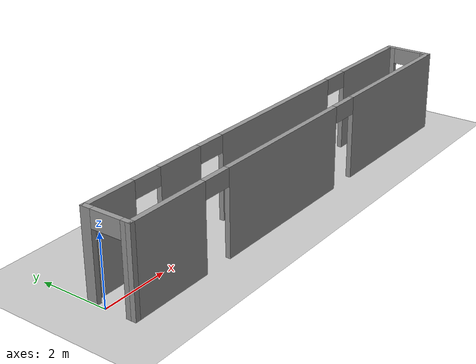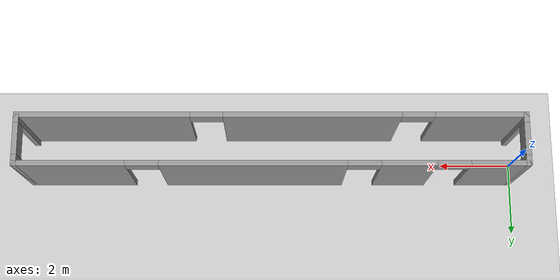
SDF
<sdf version="1.6">
 <world name="default">
  <light name="sun" type="directional">
   <pose>0 0 10 0 -0 0</pose>
   <diffuse>0.8 0.8 0.8 1</diffuse>
   <specular>0.2 0.2 0.2 1</specular>
   <attenuation>
    <range>1000</range>
    <constant>0.9</constant>
    <linear>0.01</linear>
    <quadratic>0.001</quadratic>
   </attenuation>
   <direction>-0.5 0.1 -0.9</direction>
  </light>
  <model name="ground_plane">
   <static>1</static>
   <link name="link">
    <collision name="collision">
     <geometry><plane><normal>0 0 1</normal><size>100 100</size></plane></geometry>
     <surface>
      <contact><collide_bitmask>65535</collide_bitmask></contact>
      <friction><ode><mu>100</mu><mu2>50</mu2></ode></friction>
     </surface>
    </collision>
    <visual name="visual">
     <cast_shadows>0</cast_shadows>
     <geometry><plane><normal>0 0 1</normal><size>100 100</size></plane></geometry>
     <material>
      <script><uri>file://media/materials/scripts/gazebo.material</uri><name>Gazebo/Grey</name></script>
     </material>
    </visual>
   </link>
  </model>
  <gravity>0 0 -9.8</gravity>
  <magnetic_field>6e-06 2.3e-05 -4.2e-05</magnetic_field>
  <atmosphere type="adiabatic"/>
  <physics name="default_physics" default="0" type="ode">
   <max_step_size>0.001</max_step_size>
   <real_time_factor>1</real_time_factor>
   <real_time_update_rate>1000</real_time_update_rate>
  </physics>
  <scene><ambient>0.4 0.4 0.4 1</ambient><background>0.7 0.7 0.7 1</background><shadows>1</shadows></scene>
  <spherical_coordinates>
   <surface_model>EARTH_WGS84</surface_model>
   <latitude_deg>0</latitude_deg>
   <longitude_deg>0</longitude_deg>
   <elevation>0</elevation>
   <heading_deg>0</heading_deg>
  </spherical_coordinates>
  <model name="world_4">
   <pose>7 0.75 0 0 -0 0</pose>
   <link name="Wall_2">
    <pose>0 -0.2575 0 0 -0 0</pose>
    <visual name="Wall_2_Visual_0">
     <pose>-6.1875 0 1.25 0 -0 0</pose>
     <geometry><box><size>1.625 0.15 2.5</size></box></geometry>
     <material>
      <script><uri>file://media/materials/scripts/gazebo.material</uri><name>Gazebo/Grey</name></script>
      <ambient>1 1 1 1</ambient>
     </material>
     <meta><layer>0</layer></meta>
    </visual>
    <collision name="Wall_2_Collision_0">
     <geometry><box><size>1.625 0.15 2.5</size></box></geometry>
     <pose>-6.1875 0 1.25 0 -0 0</pose>
    </collision>
    <visual name="Wall_2_Visual_1">
     <pose>-3.72 0 1.25 0 -0 0</pose>
     <geometry><box><size>1.51 0.15 2.5</size></box></geometry>
     <material>
      <script><uri>file://media/materials/scripts/gazebo.material</uri><name>Gazebo/Grey</name></script>
      <ambient>1 1 1 1</ambient>
     </material>
     <meta><layer>0</layer></meta>
    </visual>
    <collision name="Wall_2_Collision_1">
     <geometry><box><size>1.51 0.15 2.5</size></box></geometry>
     <pose>-3.72 0 1.25 0 -0 0</pose>
    </collision>
    <visual name="Wall_2_Visual_2">
     <pose>0.485 0 1.25 0 -0 0</pose>
     <geometry><box><size>5.1 0.15 2.5</size></box></geometry>
     <material>
      <script><uri>file://media/materials/scripts/gazebo.material</uri><name>Gazebo/Grey</name></script>
      <ambient>1 1 1 1</ambient>
     </material>
     <meta><layer>0</layer></meta>
    </visual>
    <collision name="Wall_2_Collision_2">
     <geometry><box><size>5.1 0.15 2.5</size></box></geometry>
     <pose>0.485 0 1.25 0 -0 0</pose>
    </collision>
    <visual name="Wall_2_Visual_3">
     <pose>5.4675 0 1.25 0 -0 0</pose>
     <geometry><box><size>3.065 0.15 2.5</size></box></geometry>
     <material>
      <script><uri>file://media/materials/scripts/gazebo.material</uri><name>Gazebo/Grey</name></script>
      <ambient>1 1 1 1</ambient>
     </material>
     <meta><layer>0</layer></meta>
    </visual>
    <collision name="Wall_2_Collision_3">
     <geometry><box><size>3.065 0.15 2.5</size></box></geometry>
     <pose>5.4675 0 1.25 0 -0 0</pose>
    </collision>
    <visual name="Wall_2_Visual_4">
     <pose>-4.925 0 2.25 0 -0 0</pose>
     <geometry><box><size>0.9 0.15 0.5</size></box></geometry>
     <material>
      <script><uri>file://media/materials/scripts/gazebo.material</uri><name>Gazebo/Grey</name></script>
      <ambient>1 1 1 1</ambient>
     </material>
     <meta><layer>0</layer></meta>
    </visual>
    <collision name="Wall_2_Collision_4">
     <geometry><box><size>0.9 0.15 0.5</size></box></geometry>
     <pose>-4.925 0 2.25 0 -0 0</pose>
    </collision>
    <visual name="Wall_2_Visual_5">
     <pose>-2.515 0 2.25 0 -0 0</pose>
     <geometry><box><size>0.9 0.15 0.5</size></box></geometry>
     <material>
      <script><uri>file://media/materials/scripts/gazebo.material</uri><name>Gazebo/Grey</name></script>
      <ambient>1 1 1 1</ambient>
     </material>
     <meta><layer>0</layer></meta>
    </visual>
    <collision name="Wall_2_Collision_5">
     <geometry><box><size>0.9 0.15 0.5</size></box></geometry>
     <pose>-2.515 0 2.25 0 -0 0</pose>
    </collision>
    <visual name="Wall_2_Visual_6">
     <pose>3.485 0 2.25 0 -0 0</pose>
     <geometry><box><size>0.9 0.15 0.5</size></box></geometry>
     <material>
      <script><uri>file://media/materials/scripts/gazebo.material</uri><name>Gazebo/Grey</name></script>
      <ambient>1 1 1 1</ambient>
     </material>
     <meta><layer>0</layer></meta>
    </visual>
    <collision name="Wall_2_Collision_6">
     <geometry><box><size>0.9 0.15 0.5</size></box></geometry>
     <pose>3.485 0 2.25 0 -0 0</pose>
    </collision>
   </link>
   <link name="Wall_3">
    <pose>6.925 -0.9325 0 0 -0 -1.5708</pose>
    <visual name="Wall_3_Visual_0">
     <pose>-0.5975 0 1.25 0 -0 0</pose>
     <geometry><box><size>0.305 0.15 2.5</size></box></geometry>
     <material>
      <script><uri>file://media/materials/scripts/gazebo.material</uri><name>Gazebo/Grey</name></script>
      <ambient>1 1 1 1</ambient>
     </material>
     <meta><layer>0</layer></meta>
    </visual>
    <collision name="Wall_3_Collision_0">
     <geometry><box><size>0.305 0.15 2.5</size></box></geometry>
     <pose>-0.5975 0 1.25 0 -0 0</pose>
    </collision>
    <visual name="Wall_3_Visual_1">
     <pose>0.6025 0 1.25 0 -0 0</pose>
     <geometry><box><size>0.295 0.15 2.5</size></box></geometry>
     <material>
      <script><uri>file://media/materials/scripts/gazebo.material</uri><name>Gazebo/Grey</name></script>
      <ambient>1 1 1 1</ambient>
     </material>
     <meta><layer>0</layer></meta>
    </visual>
    <collision name="Wall_3_Collision_1">
     <geometry><box><size>0.295 0.15 2.5</size></box></geometry>
     <pose>0.6025 0 1.25 0 -0 0</pose>
    </collision>
    <visual name="Wall_3_Visual_2">
     <pose>0.005 0 2.25 0 -0 0</pose>
     <geometry><box><size>0.9 0.15 0.5</size></box></geometry>
     <material>
      <script><uri>file://media/materials/scripts/gazebo.material</uri><name>Gazebo/Grey</name></script>
      <ambient>1 1 1 1</ambient>
     </material>
     <meta><layer>0</layer></meta>
    </visual>
    <collision name="Wall_3_Collision_2">
     <geometry><box><size>0.9 0.15 0.5</size></box></geometry>
     <pose>0.005 0 2.25 0 -0 0</pose>
    </collision>
   </link>
   <link name="Wall_4">
    <pose>0 -1.6075 0 0 -0 3.14159</pose>
    <visual name="Wall_4_Visual_0">
     <pose>-4.6075 0 1.25 0 -0 0</pose>
     <geometry><box><size>4.785 0.15 2.5</size></box></geometry>
     <material>
      <script><uri>file://media/materials/scripts/gazebo.material</uri><name>Gazebo/Grey</name></script>
      <ambient>1 1 1 1</ambient>
     </material>
     <meta><layer>0</layer></meta>
    </visual>
    <collision name="Wall_4_Collision_0">
     <geometry><box><size>4.785 0.15 2.5</size></box></geometry>
     <pose>-4.6075 0 1.25 0 -0 0</pose>
    </collision>
    <visual name="Wall_4_Visual_1">
     <pose>1.12 0 1.25 0 -0 0</pose>
     <geometry><box><size>4.87 0.15 2.5</size></box></geometry>
     <material>
      <script><uri>file://media/materials/scripts/gazebo.material</uri><name>Gazebo/Grey</name></script>
      <ambient>1 1 1 1</ambient>
     </material>
     <meta><layer>0</layer></meta>
    </visual>
    <collision name="Wall_4_Collision_1">
     <geometry><box><size>4.87 0.15 2.5</size></box></geometry>
     <pose>1.12 0 1.25 0 -0 0</pose>
    </collision>
    <visual name="Wall_4_Visual_2">
     <pose>5.7275 0 1.25 0 -0 0</pose>
     <geometry><box><size>2.545 0.15 2.5</size></box></geometry>
     <material>
      <script><uri>file://media/materials/scripts/gazebo.material</uri><name>Gazebo/Grey</name></script>
      <ambient>1 1 1 1</ambient>
     </material>
     <meta><layer>0</layer></meta>
    </visual>
    <collision name="Wall_4_Collision_2">
     <geometry><box><size>2.545 0.15 2.5</size></box></geometry>
     <pose>5.7275 0 1.25 0 -0 0</pose>
    </collision>
    <visual name="Wall_4_Visual_3">
     <pose>-1.765 0 2.25 0 -0 0</pose>
     <geometry><box><size>0.9 0.15 0.5</size></box></geometry>
     <material>
      <script><uri>file://media/materials/scripts/gazebo.material</uri><name>Gazebo/Grey</name></script>
      <ambient>1 1 1 1</ambient>
     </material>
     <meta><layer>0</layer></meta>
    </visual>
    <collision name="Wall_4_Collision_3">
     <geometry><box><size>0.9 0.15 0.5</size></box></geometry>
     <pose>-1.765 0 2.25 0 -0 0</pose>
    </collision>
    <visual name="Wall_4_Visual_4">
     <pose>4.005 0 2.25 0 -0 0</pose>
     <geometry><box><size>0.9 0.15 0.5</size></box></geometry>
     <material>
      <script><uri>file://media/materials/scripts/gazebo.material</uri><name>Gazebo/Grey</name></script>
      <ambient>1 1 1 1</ambient>
     </material>
     <meta><layer>0</layer></meta>
    </visual>
    <collision name="Wall_4_Collision_4">
     <geometry><box><size>0.9 0.15 0.5</size></box></geometry>
     <pose>4.005 0 2.25 0 -0 0</pose>
    </collision>
   </link>
   <link name="Wall_5">
    <pose>-6.925 -0.9325 0 0 -0 1.5708</pose>
    <visual name="Wall_5_Visual_0">
     <pose>-0.6025 0 1.25 0 -0 0</pose>
     <geometry><box><size>0.295 0.15 2.5</size></box></geometry>
     <material>
      <script><uri>file://media/materials/scripts/gazebo.material</uri><name>Gazebo/Grey</name></script>
      <ambient>1 1 1 1</ambient>
     </material>
     <meta><layer>0</layer></meta>
    </visual>
    <collision name="Wall_5_Collision_0">
     <geometry><box><size>0.295 0.15 2.5</size></box></geometry>
     <pose>-0.6025 0 1.25 0 -0 0</pose>
    </collision>
    <visual name="Wall_5_Visual_1">
     <pose>0.5975 0 1.25 0 -0 0</pose>
     <geometry><box><size>0.305 0.15 2.5</size></box></geometry>
     <material>
      <script><uri>file://media/materials/scripts/gazebo.material</uri><name>Gazebo/Grey</name></script>
      <ambient>1 1 1 1</ambient>
     </material>
     <meta><layer>0</layer></meta>
    </visual>
    <collision name="Wall_5_Collision_1">
     <geometry><box><size>0.305 0.15 2.5</size></box></geometry>
     <pose>0.5975 0 1.25 0 -0 0</pose>
    </collision>
    <visual name="Wall_5_Visual_2">
     <pose>-0.005 0 2.25 0 -0 0</pose>
     <geometry><box><size>0.9 0.15 0.5</size></box></geometry>
     <material>
      <script><uri>file://media/materials/scripts/gazebo.material</uri><name>Gazebo/Grey</name></script>
      <ambient>1 1 1 1</ambient>
     </material>
     <meta><layer>0</layer></meta>
    </visual>
    <collision name="Wall_5_Collision_2">
     <geometry><box><size>0.9 0.15 0.5</size></box></geometry>
     <pose>-0.005 0 2.25 0 -0 0</pose>
    </collision>
   </link>
   <static>1</static>
  </model>
  <light name="user_spot_light_0" type="spot">
   <pose>-1.1803 -2.71428 1 0 -0 0</pose>
   <diffuse>0.5 0.5 0.5 1</diffuse>
   <specular>0.1 0.1 0.1 1</specular>
   <direction>0 0 -1</direction>
   <attenuation>
    <range>20</range>
    <constant>0.5</constant>
    <linear>0.01</linear>
    <quadratic>0.001</quadratic>
   </attenuation>
   <cast_shadows>0</cast_shadows>
   <spot><inner_angle>0.6</inner_angle><outer_angle>1</outer_angle><falloff>1</falloff></spot>
  </light>
 </world>
</sdf>
